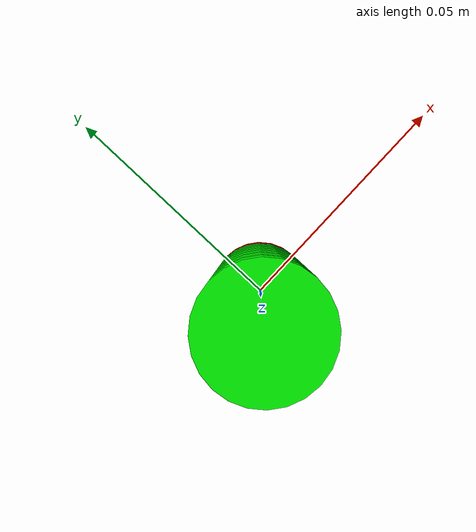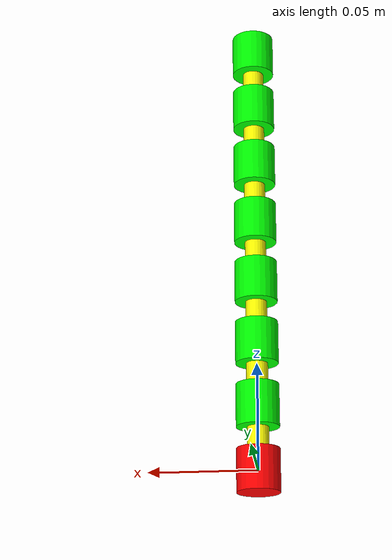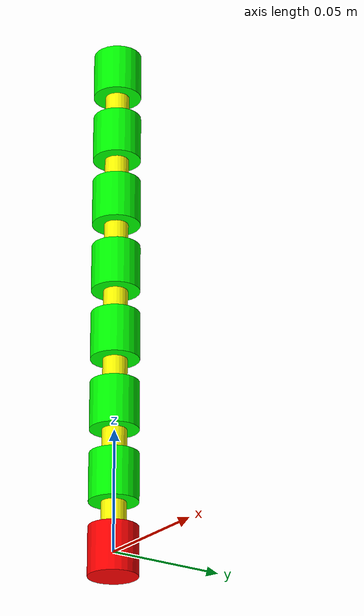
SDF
<sdf version="1.6">
  <model name='chain_seam'>

  <dynamics damping="0.0" />
  <contact>
    <restitution value="0.01"/>
    <lateral_friction value="0.5"/>
    <rolling_friction value="0.5"/>
    <contact_cfm value="0.0"/>
    <contact_erp value="1.0"/>
  </contact>

  <link name='body_link_0'>
    <self_collide>1</self_collide>
    <pose>0 0 0 0 -0 0</pose>
    <inertial>
      <pose>0 0 0 0 -0 0</pose>
      <mass>0.002</mass>
      <inertia>
        <ixx>1.1666666666666667e-07</ixx>
        <ixy>0</ixy>
        <ixz>0</ixz>
        <iyy>1.1666666666666667e-07</iyy>
        <iyz>0</iyz>
        <izz>1.0000000000000001e-07</izz>
      </inertia>
    </inertial>
    <collision name='base_link_collision_0'>
      <pose>0 0 0 0 -0 0</pose>
      <geometry>
        <cylinder>
          <length>0.02 0.02 0.02</length>
          <radius>0.01 0.01 0.01</radius>
        </cylinder>
      </geometry>
    </collision>
    <visual name='base_link_visual_0'>
      <pose>0 0 0 0 -0 0</pose>
      <geometry>
        <cylinder>
          <length>0.02 0.02 0.02</length>
          <radius>0.01 0.01 0.01</radius>
        </cylinder>
      </geometry>
      <material name="red">
        <ambient>1 0 0 1</ambient>
        <diffuse>1 0 0 1</diffuse>
        <specular>1 0 0 1</specular>
        <emissive>0 0 0 0</emissive>
      </material>
    </visual>
  </link>

  <link name='aux_body_link_1'>
    <self_collide>1</self_collide>
    <pose>0 0 0.015 0 -0 0</pose>
    <inertial>
      <pose>0 0 0 0 -0 0</pose>
      <mass>0.002</mass>
      <inertia>
        <ixx>2.9166666666666666e-08</ixx>
        <ixy>0</ixy>
        <ixz>0</ixz>
        <iyy>2.9166666666666666e-08</iyy>
        <iyz>0</iyz>
        <izz>2.5000000000000002e-08</izz>
      </inertia>
    </inertial>
    <collision name='aux_body_link_1_collision'>
      <pose>0 0 0 0 -0 0</pose>
      <geometry>
        <cylinder>
          <length>0.01 0.01 0.01</length>
          <radius>0.005 0.005 0.005</radius>
        </cylinder>
      </geometry>
    </collision>
    <visual name='aux_body_link_1_visual'>
      <pose>0 0 0 0 -0 0</pose>
      <geometry>
        <cylinder>
          <length>0.01 0.01 0.01</length>
          <radius>0.005 0.005 0.005</radius>
        </cylinder>
      </geometry>
      <material name="yellow">
        <ambient>1 1 0 1</ambient>
        <diffuse>1 1 0 1</diffuse>
        <specular>1 1 0 1</specular>
        <emissive>0 0 0 0</emissive>
      </material>
    </visual>
  </link>

  <joint name='aux_body_link_1_joint' type='revolute'>
    <pose>0 0 -0.005 0 0 0</pose>
    <child>aux_body_link_1</child>
    <parent>body_link_0</parent>
    <axis>
      <xyz>1 0 0</xyz>
      <limit>
        <lower>-3.14159</lower>
        <upper>3.14159</upper>
        <effort>20</effort>
        <velocity>2</velocity>
      </limit>
    </axis>
  </joint>

  <link name='body_link_1'>
    <self_collide>1</self_collide>
    <pose>0 0 0.03 0 -0 0</pose>
    <inertial>
      <pose>0 0 0 0 -0 0</pose>
      <mass>0.002</mass>
      <inertia>
        <ixx>1.1666666666666667e-07</ixx>
        <ixy>0</ixy>
        <ixz>0</ixz>
        <iyy>1.1666666666666667e-07</iyy>
        <iyz>0</iyz>
        <izz>1.0000000000000001e-07</izz>
      </inertia>
    </inertial>
    <collision name='body_link_1_collision'>
      <pose>0 0 0 0 -0 0</pose>
      <geometry>
        <cylinder>
          <length>0.02 0.02 0.02</length>
          <radius>0.01 0.01 0.01</radius>
        </cylinder>
      </geometry>
    </collision>
    <visual name='body_link_1_visual'>
      <pose>0 0 0 0 -0 0</pose>
      <geometry>
        <cylinder>
          <length>0.02 0.02 0.02</length>
          <radius>0.01 0.01 0.01</radius>
        </cylinder>
      </geometry>
      <material name="green">
        <ambient>0 1 0 1</ambient>
        <diffuse>0 1 0 1</diffuse>
        <specular>0 1 0 1</specular>
        <emissive>0 0 0 0</emissive>
      </material>
    </visual>
  </link>

  <joint name='body_link_1_joint' type='revolute'>
    <pose>0 0 -0.01 0 0 0</pose>
    <child>body_link_1</child>
    <parent>aux_body_link_1</parent>
    <axis>
      <xyz>0 1 0</xyz>
      <limit>
        <lower>-3.14159</lower>
        <upper>3.14159</upper>
        <effort>20</effort>
        <velocity>2</velocity>
      </limit>
    </axis>
  </joint>

  <link name='aux_body_link_2'>
    <self_collide>1</self_collide>
    <pose>0 0 0.045 0 -0 0</pose>
    <inertial>
      <pose>0 0 0 0 -0 0</pose>
      <mass>0.002</mass>
      <inertia>
        <ixx>2.9166666666666666e-08</ixx>
        <ixy>0</ixy>
        <ixz>0</ixz>
        <iyy>2.9166666666666666e-08</iyy>
        <iyz>0</iyz>
        <izz>2.5000000000000002e-08</izz>
      </inertia>
    </inertial>
    <collision name='aux_body_link_2_collision'>
      <pose>0 0 0 0 -0 0</pose>
      <geometry>
        <cylinder>
          <length>0.01 0.01 0.01</length>
          <radius>0.005 0.005 0.005</radius>
        </cylinder>
      </geometry>
    </collision>
    <visual name='aux_body_link_2_visual'>
      <pose>0 0 0 0 -0 0</pose>
      <geometry>
        <cylinder>
          <length>0.01 0.01 0.01</length>
          <radius>0.005 0.005 0.005</radius>
        </cylinder>
      </geometry>
      <material name="yellow">
        <ambient>1 1 0 1</ambient>
        <diffuse>1 1 0 1</diffuse>
        <specular>1 1 0 1</specular>
        <emissive>0 0 0 0</emissive>
      </material>
    </visual>
  </link>

  <joint name='aux_body_link_2_joint' type='revolute'>
    <pose>0 0 -0.005 0 0 0</pose>
    <child>aux_body_link_2</child>
    <parent>body_link_1</parent>
    <axis>
      <xyz>1 0 0</xyz>
      <limit>
        <lower>-3.14159</lower>
        <upper>3.14159</upper>
        <effort>20</effort>
        <velocity>2</velocity>
      </limit>
    </axis>
  </joint>

  <link name='body_link_2'>
    <self_collide>1</self_collide>
    <pose>0 0 0.06 0 -0 0</pose>
    <inertial>
      <pose>0 0 0 0 -0 0</pose>
      <mass>0.002</mass>
      <inertia>
        <ixx>1.1666666666666667e-07</ixx>
        <ixy>0</ixy>
        <ixz>0</ixz>
        <iyy>1.1666666666666667e-07</iyy>
        <iyz>0</iyz>
        <izz>1.0000000000000001e-07</izz>
      </inertia>
    </inertial>
    <collision name='body_link_2_collision'>
      <pose>0 0 0 0 -0 0</pose>
      <geometry>
        <cylinder>
          <length>0.02 0.02 0.02</length>
          <radius>0.01 0.01 0.01</radius>
        </cylinder>
      </geometry>
    </collision>
    <visual name='body_link_2_visual'>
      <pose>0 0 0 0 -0 0</pose>
      <geometry>
        <cylinder>
          <length>0.02 0.02 0.02</length>
          <radius>0.01 0.01 0.01</radius>
        </cylinder>
      </geometry>
      <material name="green">
        <ambient>0 1 0 1</ambient>
        <diffuse>0 1 0 1</diffuse>
        <specular>0 1 0 1</specular>
        <emissive>0 0 0 0</emissive>
      </material>
    </visual>
  </link>

  <joint name='body_link_2_joint' type='revolute'>
    <pose>0 0 -0.01 0 0 0</pose>
    <child>body_link_2</child>
    <parent>aux_body_link_2</parent>
    <axis>
      <xyz>0 1 0</xyz>
      <limit>
        <lower>-3.14159</lower>
        <upper>3.14159</upper>
        <effort>20</effort>
        <velocity>2</velocity>
      </limit>
    </axis>
  </joint>

  <link name='aux_body_link_3'>
    <self_collide>1</self_collide>
    <pose>0 0 0.075 0 -0 0</pose>
    <inertial>
      <pose>0 0 0 0 -0 0</pose>
      <mass>0.002</mass>
      <inertia>
        <ixx>2.9166666666666666e-08</ixx>
        <ixy>0</ixy>
        <ixz>0</ixz>
        <iyy>2.9166666666666666e-08</iyy>
        <iyz>0</iyz>
        <izz>2.5000000000000002e-08</izz>
      </inertia>
    </inertial>
    <collision name='aux_body_link_3_collision'>
      <pose>0 0 0 0 -0 0</pose>
      <geometry>
        <cylinder>
          <length>0.01 0.01 0.01</length>
          <radius>0.005 0.005 0.005</radius>
        </cylinder>
      </geometry>
    </collision>
    <visual name='aux_body_link_3_visual'>
      <pose>0 0 0 0 -0 0</pose>
      <geometry>
        <cylinder>
          <length>0.01 0.01 0.01</length>
          <radius>0.005 0.005 0.005</radius>
        </cylinder>
      </geometry>
      <material name="yellow">
        <ambient>1 1 0 1</ambient>
        <diffuse>1 1 0 1</diffuse>
        <specular>1 1 0 1</specular>
        <emissive>0 0 0 0</emissive>
      </material>
    </visual>
  </link>

  <joint name='aux_body_link_3_joint' type='revolute'>
    <pose>0 0 -0.005 0 0 0</pose>
    <child>aux_body_link_3</child>
    <parent>body_link_2</parent>
    <axis>
      <xyz>1 0 0</xyz>
      <limit>
        <lower>-3.14159</lower>
        <upper>3.14159</upper>
        <effort>20</effort>
        <velocity>2</velocity>
      </limit>
    </axis>
  </joint>

  <link name='body_link_3'>
    <self_collide>1</self_collide>
    <pose>0 0 0.09 0 -0 0</pose>
    <inertial>
      <pose>0 0 0 0 -0 0</pose>
      <mass>0.002</mass>
      <inertia>
        <ixx>1.1666666666666667e-07</ixx>
        <ixy>0</ixy>
        <ixz>0</ixz>
        <iyy>1.1666666666666667e-07</iyy>
        <iyz>0</iyz>
        <izz>1.0000000000000001e-07</izz>
      </inertia>
    </inertial>
    <collision name='body_link_3_collision'>
      <pose>0 0 0 0 -0 0</pose>
      <geometry>
        <cylinder>
          <length>0.02 0.02 0.02</length>
          <radius>0.01 0.01 0.01</radius>
        </cylinder>
      </geometry>
    </collision>
    <visual name='body_link_3_visual'>
      <pose>0 0 0 0 -0 0</pose>
      <geometry>
        <cylinder>
          <length>0.02 0.02 0.02</length>
          <radius>0.01 0.01 0.01</radius>
        </cylinder>
      </geometry>
      <material name="green">
        <ambient>0 1 0 1</ambient>
        <diffuse>0 1 0 1</diffuse>
        <specular>0 1 0 1</specular>
        <emissive>0 0 0 0</emissive>
      </material>
    </visual>
  </link>

  <joint name='body_link_3_joint' type='revolute'>
    <pose>0 0 -0.01 0 0 0</pose>
    <child>body_link_3</child>
    <parent>aux_body_link_3</parent>
    <axis>
      <xyz>0 1 0</xyz>
      <limit>
        <lower>-3.14159</lower>
        <upper>3.14159</upper>
        <effort>20</effort>
        <velocity>2</velocity>
      </limit>
    </axis>
  </joint>

  <link name='aux_body_link_4'>
    <self_collide>1</self_collide>
    <pose>0 0 0.105 0 -0 0</pose>
    <inertial>
      <pose>0 0 0 0 -0 0</pose>
      <mass>0.002</mass>
      <inertia>
        <ixx>2.9166666666666666e-08</ixx>
        <ixy>0</ixy>
        <ixz>0</ixz>
        <iyy>2.9166666666666666e-08</iyy>
        <iyz>0</iyz>
        <izz>2.5000000000000002e-08</izz>
      </inertia>
    </inertial>
    <collision name='aux_body_link_4_collision'>
      <pose>0 0 0 0 -0 0</pose>
      <geometry>
        <cylinder>
          <length>0.01 0.01 0.01</length>
          <radius>0.005 0.005 0.005</radius>
        </cylinder>
      </geometry>
    </collision>
    <visual name='aux_body_link_4_visual'>
      <pose>0 0 0 0 -0 0</pose>
      <geometry>
        <cylinder>
          <length>0.01 0.01 0.01</length>
          <radius>0.005 0.005 0.005</radius>
        </cylinder>
      </geometry>
      <material name="yellow">
        <ambient>1 1 0 1</ambient>
        <diffuse>1 1 0 1</diffuse>
        <specular>1 1 0 1</specular>
        <emissive>0 0 0 0</emissive>
      </material>
    </visual>
  </link>

  <joint name='aux_body_link_4_joint' type='revolute'>
    <pose>0 0 -0.005 0 0 0</pose>
    <child>aux_body_link_4</child>
    <parent>body_link_3</parent>
    <axis>
      <xyz>1 0 0</xyz>
      <limit>
        <lower>-3.14159</lower>
        <upper>3.14159</upper>
        <effort>20</effort>
        <velocity>2</velocity>
      </limit>
    </axis>
  </joint>

  <link name='body_link_4'>
    <self_collide>1</self_collide>
    <pose>0 0 0.12 0 -0 0</pose>
    <inertial>
      <pose>0 0 0 0 -0 0</pose>
      <mass>0.002</mass>
      <inertia>
        <ixx>1.1666666666666667e-07</ixx>
        <ixy>0</ixy>
        <ixz>0</ixz>
        <iyy>1.1666666666666667e-07</iyy>
        <iyz>0</iyz>
        <izz>1.0000000000000001e-07</izz>
      </inertia>
    </inertial>
    <collision name='body_link_4_collision'>
      <pose>0 0 0 0 -0 0</pose>
      <geometry>
        <cylinder>
          <length>0.02 0.02 0.02</length>
          <radius>0.01 0.01 0.01</radius>
        </cylinder>
      </geometry>
    </collision>
    <visual name='body_link_4_visual'>
      <pose>0 0 0 0 -0 0</pose>
      <geometry>
        <cylinder>
          <length>0.02 0.02 0.02</length>
          <radius>0.01 0.01 0.01</radius>
        </cylinder>
      </geometry>
      <material name="green">
        <ambient>0 1 0 1</ambient>
        <diffuse>0 1 0 1</diffuse>
        <specular>0 1 0 1</specular>
        <emissive>0 0 0 0</emissive>
      </material>
    </visual>
  </link>

  <joint name='body_link_4_joint' type='revolute'>
    <pose>0 0 -0.01 0 0 0</pose>
    <child>body_link_4</child>
    <parent>aux_body_link_4</parent>
    <axis>
      <xyz>0 1 0</xyz>
      <limit>
        <lower>-3.14159</lower>
        <upper>3.14159</upper>
        <effort>20</effort>
        <velocity>2</velocity>
      </limit>
    </axis>
  </joint>

  <link name='aux_body_link_5'>
    <self_collide>1</self_collide>
    <pose>0 0 0.135 0 -0 0</pose>
    <inertial>
      <pose>0 0 0 0 -0 0</pose>
      <mass>0.002</mass>
      <inertia>
        <ixx>2.9166666666666666e-08</ixx>
        <ixy>0</ixy>
        <ixz>0</ixz>
        <iyy>2.9166666666666666e-08</iyy>
        <iyz>0</iyz>
        <izz>2.5000000000000002e-08</izz>
      </inertia>
    </inertial>
    <collision name='aux_body_link_5_collision'>
      <pose>0 0 0 0 -0 0</pose>
      <geometry>
        <cylinder>
          <length>0.01 0.01 0.01</length>
          <radius>0.005 0.005 0.005</radius>
        </cylinder>
      </geometry>
    </collision>
    <visual name='aux_body_link_5_visual'>
      <pose>0 0 0 0 -0 0</pose>
      <geometry>
        <cylinder>
          <length>0.01 0.01 0.01</length>
          <radius>0.005 0.005 0.005</radius>
        </cylinder>
      </geometry>
      <material name="yellow">
        <ambient>1 1 0 1</ambient>
        <diffuse>1 1 0 1</diffuse>
        <specular>1 1 0 1</specular>
        <emissive>0 0 0 0</emissive>
      </material>
    </visual>
  </link>

  <joint name='aux_body_link_5_joint' type='revolute'>
    <pose>0 0 -0.005 0 0 0</pose>
    <child>aux_body_link_5</child>
    <parent>body_link_4</parent>
    <axis>
      <xyz>1 0 0</xyz>
      <limit>
        <lower>-3.14159</lower>
        <upper>3.14159</upper>
        <effort>20</effort>
        <velocity>2</velocity>
      </limit>
    </axis>
  </joint>

  <link name='body_link_5'>
    <self_collide>1</self_collide>
    <pose>0 0 0.15 0 -0 0</pose>
    <inertial>
      <pose>0 0 0 0 -0 0</pose>
      <mass>0.002</mass>
      <inertia>
        <ixx>1.1666666666666667e-07</ixx>
        <ixy>0</ixy>
        <ixz>0</ixz>
        <iyy>1.1666666666666667e-07</iyy>
        <iyz>0</iyz>
        <izz>1.0000000000000001e-07</izz>
      </inertia>
    </inertial>
    <collision name='body_link_5_collision'>
      <pose>0 0 0 0 -0 0</pose>
      <geometry>
        <cylinder>
          <length>0.02 0.02 0.02</length>
          <radius>0.01 0.01 0.01</radius>
        </cylinder>
      </geometry>
    </collision>
    <visual name='body_link_5_visual'>
      <pose>0 0 0 0 -0 0</pose>
      <geometry>
        <cylinder>
          <length>0.02 0.02 0.02</length>
          <radius>0.01 0.01 0.01</radius>
        </cylinder>
      </geometry>
      <material name="green">
        <ambient>0 1 0 1</ambient>
        <diffuse>0 1 0 1</diffuse>
        <specular>0 1 0 1</specular>
        <emissive>0 0 0 0</emissive>
      </material>
    </visual>
  </link>

  <joint name='body_link_5_joint' type='revolute'>
    <pose>0 0 -0.01 0 0 0</pose>
    <child>body_link_5</child>
    <parent>aux_body_link_5</parent>
    <axis>
      <xyz>0 1 0</xyz>
      <limit>
        <lower>-3.14159</lower>
        <upper>3.14159</upper>
        <effort>20</effort>
        <velocity>2</velocity>
      </limit>
    </axis>
  </joint>

  <link name='aux_body_link_6'>
    <self_collide>1</self_collide>
    <pose>0 0 0.16499999999999998 0 -0 0</pose>
    <inertial>
      <pose>0 0 0 0 -0 0</pose>
      <mass>0.002</mass>
      <inertia>
        <ixx>2.9166666666666666e-08</ixx>
        <ixy>0</ixy>
        <ixz>0</ixz>
        <iyy>2.9166666666666666e-08</iyy>
        <iyz>0</iyz>
        <izz>2.5000000000000002e-08</izz>
      </inertia>
    </inertial>
    <collision name='aux_body_link_6_collision'>
      <pose>0 0 0 0 -0 0</pose>
      <geometry>
        <cylinder>
          <length>0.01 0.01 0.01</length>
          <radius>0.005 0.005 0.005</radius>
        </cylinder>
      </geometry>
    </collision>
    <visual name='aux_body_link_6_visual'>
      <pose>0 0 0 0 -0 0</pose>
      <geometry>
        <cylinder>
          <length>0.01 0.01 0.01</length>
          <radius>0.005 0.005 0.005</radius>
        </cylinder>
      </geometry>
      <material name="yellow">
        <ambient>1 1 0 1</ambient>
        <diffuse>1 1 0 1</diffuse>
        <specular>1 1 0 1</specular>
        <emissive>0 0 0 0</emissive>
      </material>
    </visual>
  </link>

  <joint name='aux_body_link_6_joint' type='revolute'>
    <pose>0 0 -0.005 0 0 0</pose>
    <child>aux_body_link_6</child>
    <parent>body_link_5</parent>
    <axis>
      <xyz>1 0 0</xyz>
      <limit>
        <lower>-3.14159</lower>
        <upper>3.14159</upper>
        <effort>20</effort>
        <velocity>2</velocity>
      </limit>
    </axis>
  </joint>

  <link name='body_link_6'>
    <self_collide>1</self_collide>
    <pose>0 0 0.18 0 -0 0</pose>
    <inertial>
      <pose>0 0 0 0 -0 0</pose>
      <mass>0.002</mass>
      <inertia>
        <ixx>1.1666666666666667e-07</ixx>
        <ixy>0</ixy>
        <ixz>0</ixz>
        <iyy>1.1666666666666667e-07</iyy>
        <iyz>0</iyz>
        <izz>1.0000000000000001e-07</izz>
      </inertia>
    </inertial>
    <collision name='body_link_6_collision'>
      <pose>0 0 0 0 -0 0</pose>
      <geometry>
        <cylinder>
          <length>0.02 0.02 0.02</length>
          <radius>0.01 0.01 0.01</radius>
        </cylinder>
      </geometry>
    </collision>
    <visual name='body_link_6_visual'>
      <pose>0 0 0 0 -0 0</pose>
      <geometry>
        <cylinder>
          <length>0.02 0.02 0.02</length>
          <radius>0.01 0.01 0.01</radius>
        </cylinder>
      </geometry>
      <material name="green">
        <ambient>0 1 0 1</ambient>
        <diffuse>0 1 0 1</diffuse>
        <specular>0 1 0 1</specular>
        <emissive>0 0 0 0</emissive>
      </material>
    </visual>
  </link>

  <joint name='body_link_6_joint' type='revolute'>
    <pose>0 0 -0.01 0 0 0</pose>
    <child>body_link_6</child>
    <parent>aux_body_link_6</parent>
    <axis>
      <xyz>0 1 0</xyz>
      <limit>
        <lower>-3.14159</lower>
        <upper>3.14159</upper>
        <effort>20</effort>
        <velocity>2</velocity>
      </limit>
    </axis>
  </joint>

  <link name='aux_body_link_7'>
    <self_collide>1</self_collide>
    <pose>0 0 0.195 0 -0 0</pose>
    <inertial>
      <pose>0 0 0 0 -0 0</pose>
      <mass>0.002</mass>
      <inertia>
        <ixx>2.9166666666666666e-08</ixx>
        <ixy>0</ixy>
        <ixz>0</ixz>
        <iyy>2.9166666666666666e-08</iyy>
        <iyz>0</iyz>
        <izz>2.5000000000000002e-08</izz>
      </inertia>
    </inertial>
    <collision name='aux_body_link_7_collision'>
      <pose>0 0 0 0 -0 0</pose>
      <geometry>
        <cylinder>
          <length>0.01 0.01 0.01</length>
          <radius>0.005 0.005 0.005</radius>
        </cylinder>
      </geometry>
    </collision>
    <visual name='aux_body_link_7_visual'>
      <pose>0 0 0 0 -0 0</pose>
      <geometry>
        <cylinder>
          <length>0.01 0.01 0.01</length>
          <radius>0.005 0.005 0.005</radius>
        </cylinder>
      </geometry>
      <material name="yellow">
        <ambient>1 1 0 1</ambient>
        <diffuse>1 1 0 1</diffuse>
        <specular>1 1 0 1</specular>
        <emissive>0 0 0 0</emissive>
      </material>
    </visual>
  </link>

  <joint name='aux_body_link_7_joint' type='revolute'>
    <pose>0 0 -0.005 0 0 0</pose>
    <child>aux_body_link_7</child>
    <parent>body_link_6</parent>
    <axis>
      <xyz>1 0 0</xyz>
      <limit>
        <lower>-3.14159</lower>
        <upper>3.14159</upper>
        <effort>20</effort>
        <velocity>2</velocity>
      </limit>
    </axis>
  </joint>

  <link name='body_link_7'>
    <self_collide>1</self_collide>
    <pose>0 0 0.21 0 -0 0</pose>
    <inertial>
      <pose>0 0 0 0 -0 0</pose>
      <mass>0.002</mass>
      <inertia>
        <ixx>1.1666666666666667e-07</ixx>
        <ixy>0</ixy>
        <ixz>0</ixz>
        <iyy>1.1666666666666667e-07</iyy>
        <iyz>0</iyz>
        <izz>1.0000000000000001e-07</izz>
      </inertia>
    </inertial>
    <collision name='body_link_7_collision'>
      <pose>0 0 0 0 -0 0</pose>
      <geometry>
        <cylinder>
          <length>0.02 0.02 0.02</length>
          <radius>0.01 0.01 0.01</radius>
        </cylinder>
      </geometry>
    </collision>
    <visual name='body_link_7_visual'>
      <pose>0 0 0 0 -0 0</pose>
      <geometry>
        <cylinder>
          <length>0.02 0.02 0.02</length>
          <radius>0.01 0.01 0.01</radius>
        </cylinder>
      </geometry>
      <material name="green">
        <ambient>0 1 0 1</ambient>
        <diffuse>0 1 0 1</diffuse>
        <specular>0 1 0 1</specular>
        <emissive>0 0 0 0</emissive>
      </material>
    </visual>
  </link>

  <joint name='body_link_7_joint' type='revolute'>
    <pose>0 0 -0.01 0 0 0</pose>
    <child>body_link_7</child>
    <parent>aux_body_link_7</parent>
    <axis>
      <xyz>0 1 0</xyz>
      <limit>
        <lower>-3.14159</lower>
        <upper>3.14159</upper>
        <effort>20</effort>
        <velocity>2</velocity>
      </limit>
    </axis>
  </joint>

  </model>
</sdf>
